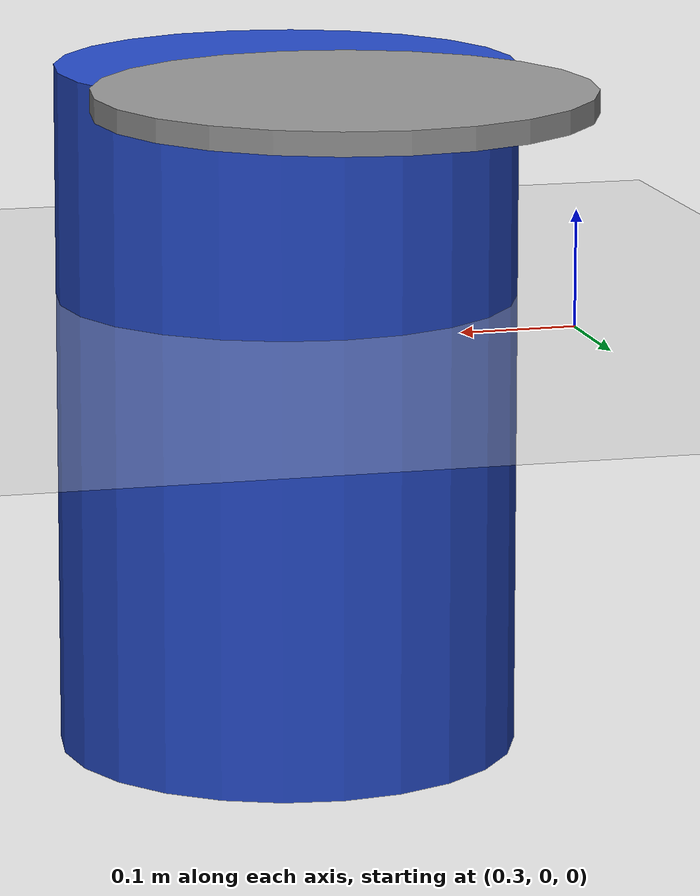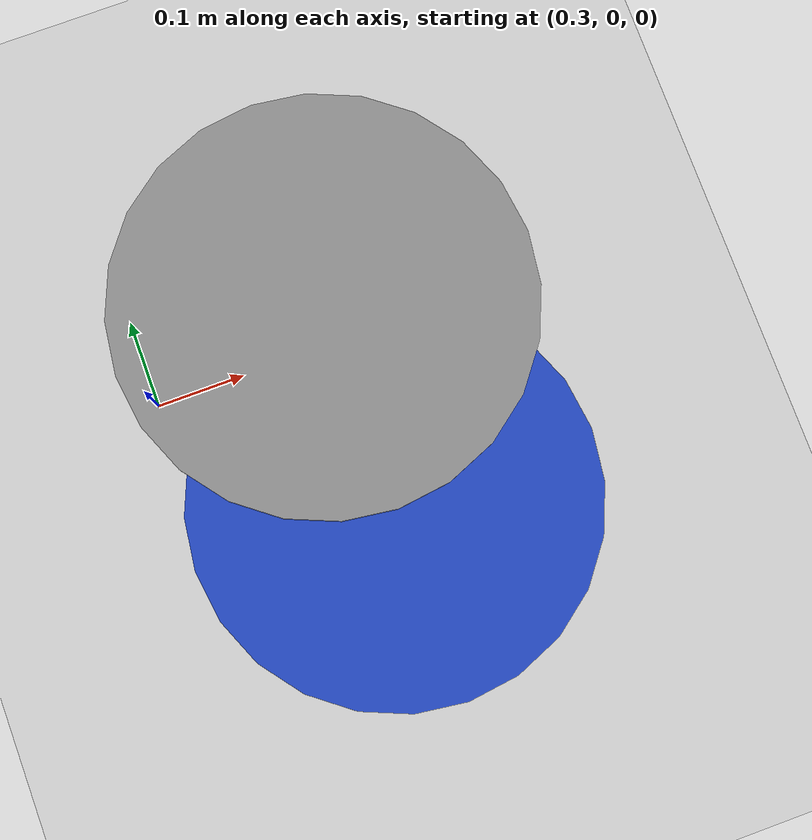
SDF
<?xml version="1.0" ?>
<sdf version="1.4">

  <world name="default">
    <include>
      <uri>model://ground_plane</uri>
    </include>

    <include>
      <uri>model://sun</uri>
    </include>

    <scene>
      <shadows>0</shadows>
    </scene>

    <!-- GAZEBO PLUGINS: -->
    <!-- The following plugins must be activated for the ros2_grasping to effectively work: -->

    <plugin name="gazebo_ros_state" filename="libgazebo_ros_state.so">
      <ros>
        <namespace>/ros2_grasp</namespace>
        <argument>model_states:=model_states</argument>
        <argument>link_states:=link_states</argument>
      </ros>
      <update_rate>1.0</update_rate>
    </plugin>

    <plugin name="gazebo_ros_properties" filename="libgazebo_ros_properties.so">
      <ros>
        <namespace>/ros2_grasp</namespace>
      </ros>
    </plugin>

    <include>
      <name>conveyor_belt</name>
      <pose>0.5 -0.2 -0.4 0 0 0</pose>
      <uri>model://conveyor_belt</uri>
    </include>

     <!-- Spotlight -->

  </world>
</sdf>

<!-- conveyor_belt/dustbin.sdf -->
<sdf version="1.4">

  <model name="dustbin">
    <static>false</static>

    <!-- Base Link -->
    <link name="base_link">
      <inertial>
        <pose>0 0 0.3 0 0 0</pose>
        <mass>2.0</mass>
        <inertia>
          <ixx>0.1</ixx>
          <ixy>0</ixy>
          <ixz>0</ixz>
          <iyy>0.1</iyy>
          <iyz>0</iyz>
          <izz>0.1</izz>
        </inertia>
      </inertial>

      <collision name="collision">
        <pose>0 0 0.3 0 0 0</pose>
        <geometry>
          <cylinder>
            <radius>0.2</radius>
            <length>0.6</length>
          </cylinder>
        </geometry>
        <surface>
          <friction>
            <ode>
              <mu>0.2</mu>
              <mu2>0.2</mu2>
            </ode>
          </friction>
        </surface>
      </collision>

      <visual name="visual">
        <pose>0 0 0.3 0 0 0</pose>
        <geometry>
          <cylinder>
            <radius>0.2</radius>
            <length>0.6</length>
          </cylinder>
        </geometry>
        <material>
          <script>
            <uri>file://media/materials/scripts/gazebo.material</uri>
            <name>Gazebo/Blue</name>
          </script>
        </material>
      </visual>
    </link>

    <!-- Lid Link -->

     <link name="lid">
        <pose>0 0.2 0.6 0 0 0</pose>
        <inertial>
            <mass>0.5</mass>
            <inertia>
            <ixx>0.01</ixx>
            <ixy>0</ixy>
            <ixz>0</ixz>
            <iyy>0.01</iyy>
            <iyz>0</iyz>
            <izz>0.01</izz>
            </inertia>
        </inertial>

      <collision name="collision">
        <geometry>
          <cylinder>
            <radius>0.21</radius>
            <length>0.02</length>
          </cylinder>
        </geometry>
        <surface>
          <friction>
            <ode>
              <mu>0.2</mu>
              <mu2>0.2</mu2>
            </ode>
          </friction>
        </surface>
      </collision>

      <visual name="visual">
        <geometry>
          <cylinder>
            <radius>0.21</radius>
            <length>0.02</length>
          </cylinder>
        </geometry>
        <material>
          <script>
            <uri>file://media/materials/scripts/gazebo.material</uri>
            <name>Gazebo/Grey</name>
          </script>
        </material>
      </visual>
    </link>

    <!-- Hinge Joint -->
    <joint name="lid_joint" type="revolute">
      <parent>base_link</parent>
      <child>lid</child>
      <pose>0 0 0 0 0 0</pose>
      <axis>
        <xyz>0 1 0</xyz>
        <limit>
          <lower>0</lower>
          <upper>1.57</upper>
          <effort>10</effort>
          <velocity>1.0</velocity>
        </limit>
        <dynamics>
          <damping>0.5</damping>
          <friction>0.1</friction>
        </dynamics>
      </axis>
    </joint>
  </model>
</sdf>
